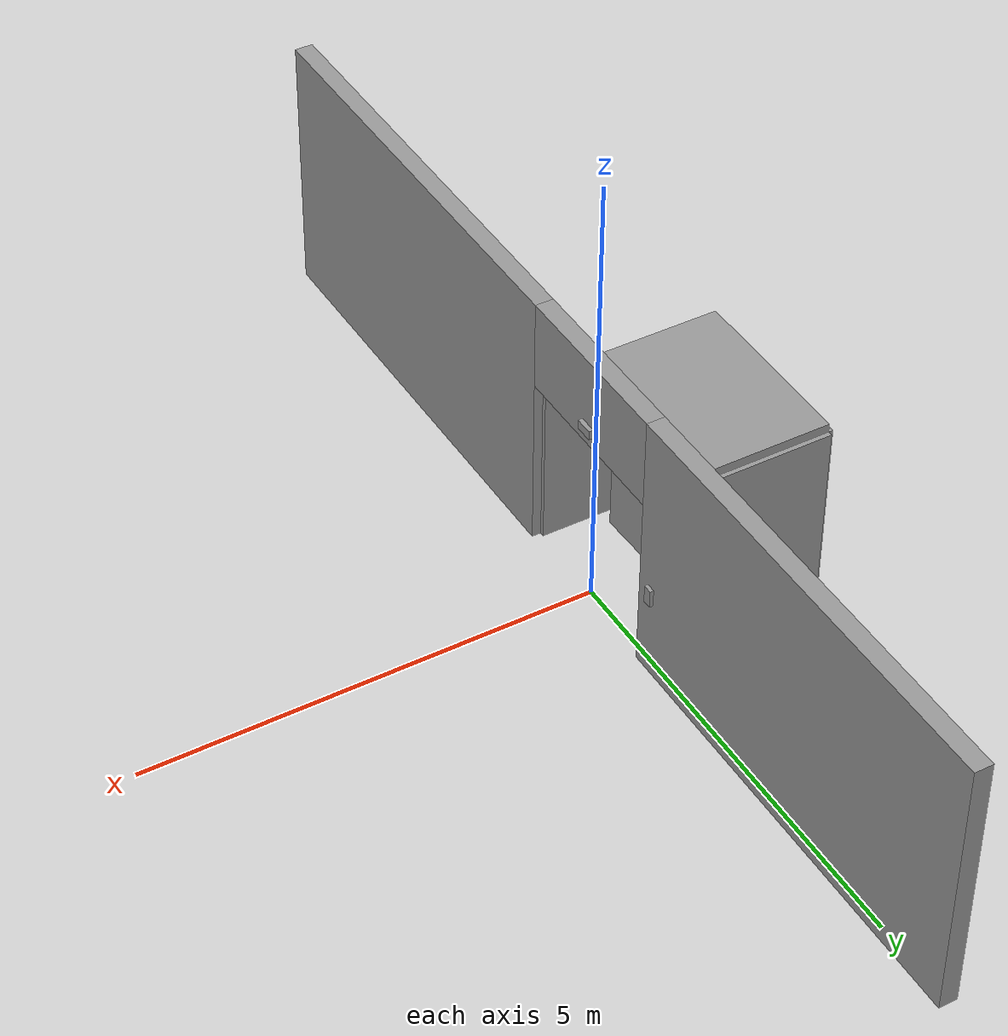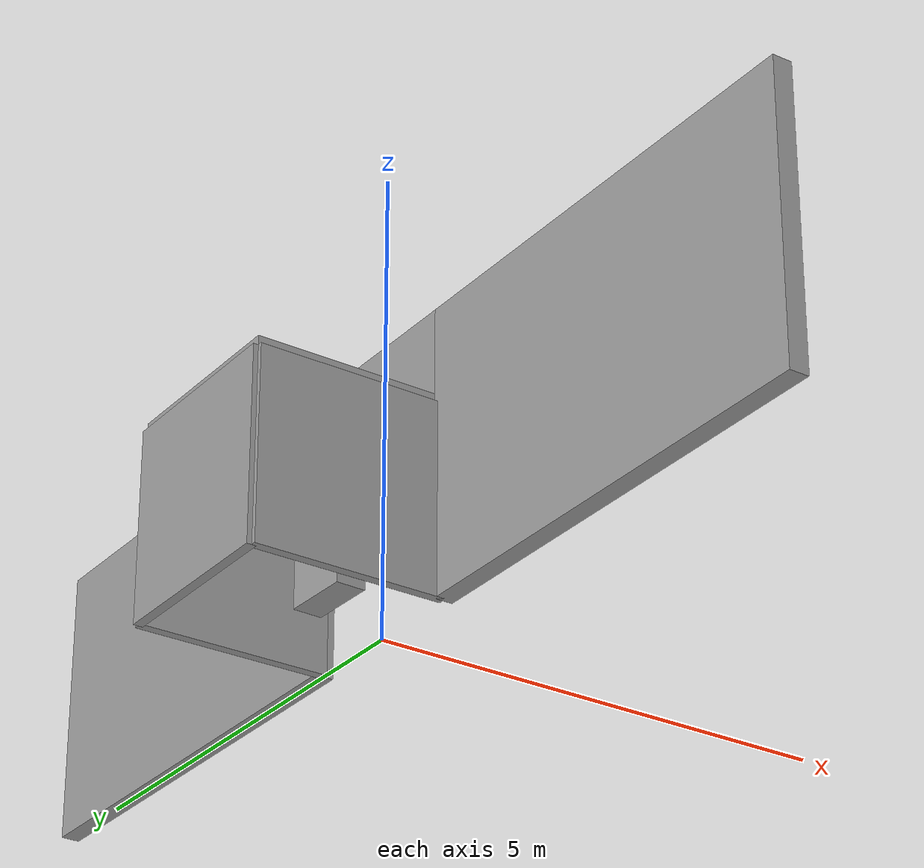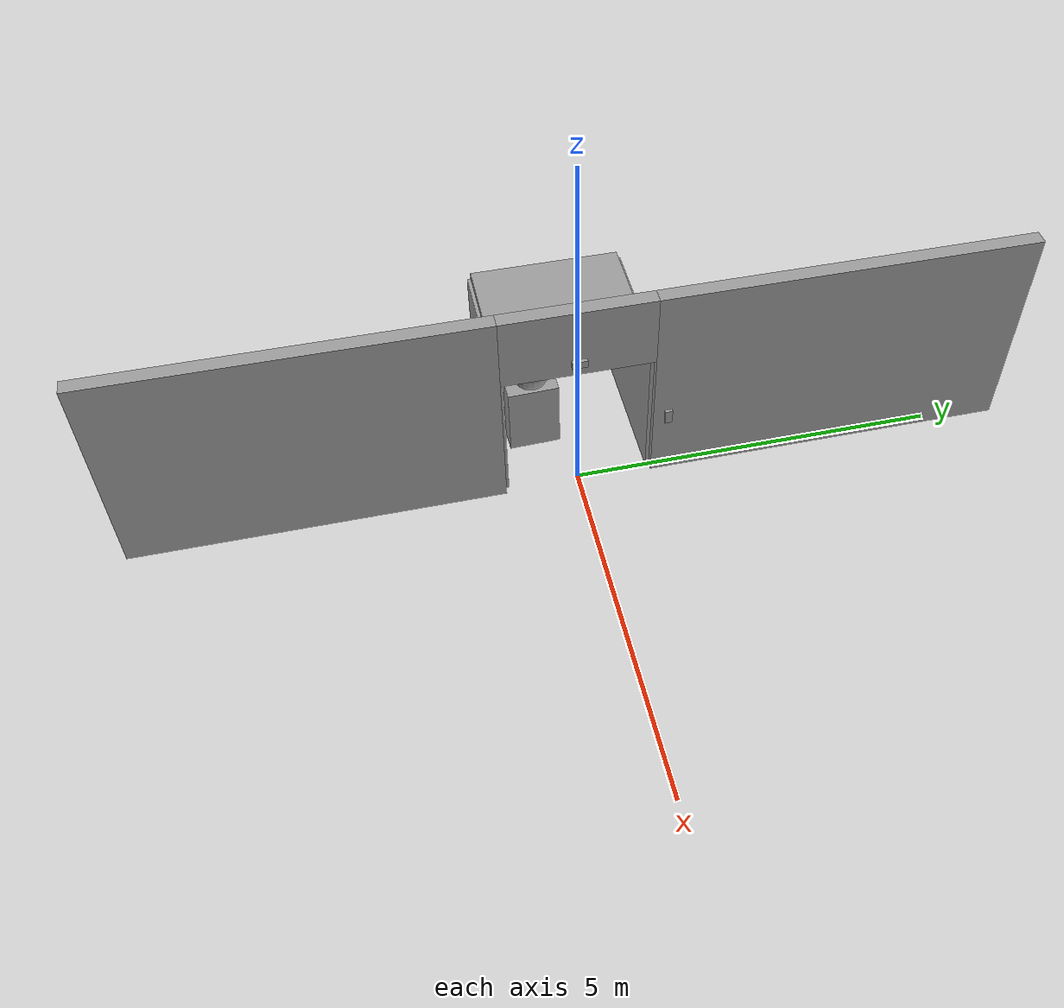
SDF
<?xml version='1.0'?>
<sdf version='1.7'>
  <model name='elevator'>
    <link name='link_1'>
      <inertial>
        <mass>1</mass>
        <inertia>
          <ixx>0.166667</ixx>
          <ixy>0</ixy>
          <ixz>0</ixz>
          <iyy>0.166667</iyy>
          <iyz>0</iyz>
          <izz>0.166667</izz>
        </inertia>
        <pose>0 0 0 0 -0 0</pose>
      </inertial>
      <pose>0.125 0 2.2 0 -0 0</pose>
      <gravity>1</gravity>
      <self_collide>0</self_collide>
      <kinematic>0</kinematic>
      <enable_wind>0</enable_wind>
      <visual name='visual'>
        <pose>0 0 0 0 -0 0</pose>
        <geometry>
          <box>
            <size>0.05 0.2 0.1</size>
          </box>
        </geometry>
        <material>
          <lighting>1</lighting>
          <script>
            <uri>file://media/materials/scripts/gazebo.material</uri>
            <name>Gazebo/Grey</name>
          </script>
          <shader type='pixel'>
            <normal_map>__default__</normal_map>
          </shader>
          <ambient>0.93 0.94 0.95 1</ambient>
          <diffuse>0.93 0.94 0.95 1</diffuse>
          <specular>0.93 0.94 0.95 1</specular>
          <emissive>0 0 0 1</emissive>
        </material>
        <transparency>0</transparency>
        <cast_shadows>1</cast_shadows>
      </visual>
      <collision name='collision'>
        <laser_retro>0</laser_retro>
        <max_contacts>10</max_contacts>
        <pose>0 0 0 0 -0 0</pose>
        <geometry>
          <box>
            <size>0.05 0.2 0.1</size>
          </box>
        </geometry>
        <surface>
          <friction>
            <ode>
              <mu>1</mu>
              <mu2>1</mu2>
              <fdir1>0 0 0</fdir1>
              <slip1>0</slip1>
              <slip2>0</slip2>
            </ode>
            <torsional>
              <coefficient>1</coefficient>
              <patch_radius>0</patch_radius>
              <surface_radius>0</surface_radius>
              <use_patch_radius>1</use_patch_radius>
              <ode>
                <slip>0</slip>
              </ode>
            </torsional>
          </friction>
          <bounce>
            <restitution_coefficient>0</restitution_coefficient>
            <threshold>1e+06</threshold>
          </bounce>
          <contact>
            <collide_without_contact>0</collide_without_contact>
            <collide_without_contact_bitmask>1</collide_without_contact_bitmask>
            <collide_bitmask>1</collide_bitmask>
            <ode>
              <soft_cfm>0</soft_cfm>
              <soft_erp>0.2</soft_erp>
              <kp>1e+13</kp>
              <kd>1</kd>
              <max_vel>0.01</max_vel>
              <min_depth>0</min_depth>
            </ode>
            <bullet>
              <split_impulse>1</split_impulse>
              <split_impulse_penetration_threshold>-0.01</split_impulse_penetration_threshold>
              <soft_cfm>0</soft_cfm>
              <soft_erp>0.2</soft_erp>
              <kp>1e+13</kp>
              <kd>1</kd>
            </bullet>
          </contact>
        </surface>
      </collision>
    </link>
    <link name='link_1_clone'>
      <inertial>
        <mass>1</mass>
        <inertia>
          <ixx>0.166667</ixx>
          <ixy>0</ixy>
          <ixz>0</ixz>
          <iyy>0.166667</iyy>
          <iyz>0</iyz>
          <izz>0.166667</izz>
        </inertia>
        <pose>0 0 0 0 -0 0</pose>
      </inertial>
      <pose>0.115 1.2 1 0 -0 0</pose>
      <gravity>1</gravity>
      <self_collide>0</self_collide>
      <kinematic>0</kinematic>
      <enable_wind>0</enable_wind>
      <visual name='visual'>
        <pose>0 0 0 0 -0 0</pose>
        <geometry>
          <box>
            <size>0.05 0.1 0.2</size>
          </box>
        </geometry>
        <material>
          <lighting>1</lighting>
          <script>
            <uri>file://media/materials/scripts/gazebo.material</uri>
            <name>Gazebo/Grey</name>
          </script>
          <shader type='pixel'>
            <normal_map>__default__</normal_map>
          </shader>
          <ambient>0.6 0.6 0.6 1</ambient>
          <diffuse>0.6 0.6 0.6 1</diffuse>
          <specular>0.6 0.6 0.6 1</specular>
          <emissive>0.6 0.6 0.6 1</emissive>
        </material>
        <transparency>0</transparency>
        <cast_shadows>1</cast_shadows>
      </visual>
      <collision name='collision'>
        <laser_retro>0</laser_retro>
        <max_contacts>10</max_contacts>
        <pose>0 0 0 0 -0 0</pose>
        <geometry>
          <box>
            <size>0.05 0.1 0.2</size>
          </box>
        </geometry>
        <surface>
          <friction>
            <ode>
              <mu>1</mu>
              <mu2>1</mu2>
              <fdir1>0 0 0</fdir1>
              <slip1>0</slip1>
              <slip2>0</slip2>
            </ode>
            <torsional>
              <coefficient>1</coefficient>
              <patch_radius>0</patch_radius>
              <surface_radius>0</surface_radius>
              <use_patch_radius>1</use_patch_radius>
              <ode>
                <slip>0</slip>
              </ode>
            </torsional>
          </friction>
          <bounce>
            <restitution_coefficient>0</restitution_coefficient>
            <threshold>1e+06</threshold>
          </bounce>
          <contact>
            <collide_without_contact>0</collide_without_contact>
            <collide_without_contact_bitmask>1</collide_without_contact_bitmask>
            <collide_bitmask>1</collide_bitmask>
            <ode>
              <soft_cfm>0</soft_cfm>
              <soft_erp>0.2</soft_erp>
              <kp>1e+13</kp>
              <kd>1</kd>
              <max_vel>0.01</max_vel>
              <min_depth>0</min_depth>
            </ode>
            <bullet>
              <split_impulse>1</split_impulse>
              <split_impulse_penetration_threshold>-0.01</split_impulse_penetration_threshold>
              <soft_cfm>0</soft_cfm>
              <soft_erp>0.2</soft_erp>
              <kp>1e+13</kp>
              <kd>1</kd>
            </bullet>
          </contact>
        </surface>
      </collision>
    </link>
    <link name='link_2'>
      <inertial>
        <mass>1</mass>
        <inertia>
          <ixx>0.166667</ixx>
          <ixy>0</ixy>
          <ixz>0</ixz>
          <iyy>0.166667</iyy>
          <iyz>0</iyz>
          <izz>0.166667</izz>
        </inertia>
        <pose>0 0 0 0 -0 0</pose>
      </inertial>
      <pose>0 -3.5 1.5 0 -0 0</pose>
      <gravity>1</gravity>
      <self_collide>0</self_collide>
      <kinematic>0</kinematic>
      <enable_wind>0</enable_wind>
      <visual name='visual'>
        <pose>0 0 0 0 -0 0</pose>
        <geometry>
          <box>
            <size>0.2 5 3</size>
          </box>
        </geometry>
        <material>
          <lighting>1</lighting>
          <script>
            <uri>file://media/materials/scripts/gazebo.material</uri>
            <name>Gazebo/Grey</name>
          </script>
          <shader type='pixel'>
            <normal_map>__default__</normal_map>
          </shader>
          <ambient>0.3 0.3 0.3 1</ambient>
          <diffuse>0.7 0.7 0.7 1</diffuse>
          <specular>0.01 0.01 0.01 1</specular>
          <emissive>0 0 0 1</emissive>
        </material>
        <transparency>0</transparency>
        <cast_shadows>1</cast_shadows>
      </visual>
      <collision name='collision'>
        <laser_retro>0</laser_retro>
        <max_contacts>10</max_contacts>
        <pose>0 0 0 0 -0 0</pose>
        <geometry>
          <box>
            <size>0.2 5 3</size>
          </box>
        </geometry>
        <surface>
          <friction>
            <ode>
              <mu>1</mu>
              <mu2>1</mu2>
              <fdir1>0 0 0</fdir1>
              <slip1>0</slip1>
              <slip2>0</slip2>
            </ode>
            <torsional>
              <coefficient>1</coefficient>
              <patch_radius>0</patch_radius>
              <surface_radius>0</surface_radius>
              <use_patch_radius>1</use_patch_radius>
              <ode>
                <slip>0</slip>
              </ode>
            </torsional>
          </friction>
          <bounce>
            <restitution_coefficient>0</restitution_coefficient>
            <threshold>1e+06</threshold>
          </bounce>
          <contact>
            <collide_without_contact>0</collide_without_contact>
            <collide_without_contact_bitmask>1</collide_without_contact_bitmask>
            <collide_bitmask>1</collide_bitmask>
            <ode>
              <soft_cfm>0</soft_cfm>
              <soft_erp>0.2</soft_erp>
              <kp>1e+13</kp>
              <kd>1</kd>
              <max_vel>0.01</max_vel>
              <min_depth>0</min_depth>
            </ode>
            <bullet>
              <split_impulse>1</split_impulse>
              <split_impulse_penetration_threshold>-0.01</split_impulse_penetration_threshold>
              <soft_cfm>0</soft_cfm>
              <soft_erp>0.2</soft_erp>
              <kp>1e+13</kp>
              <kd>1</kd>
            </bullet>
          </contact>
        </surface>
      </collision>
    </link>
    <link name='link_2_clone'>
      <inertial>
        <mass>1</mass>
        <inertia>
          <ixx>0.166667</ixx>
          <ixy>0</ixy>
          <ixz>0</ixz>
          <iyy>0.166667</iyy>
          <iyz>0</iyz>
          <izz>0.166667</izz>
        </inertia>
        <pose>0 0 0 0 -0 0</pose>
      </inertial>
      <pose>0 3.5 1.5 0 -0 0</pose>
      <gravity>1</gravity>
      <self_collide>0</self_collide>
      <kinematic>0</kinematic>
      <enable_wind>0</enable_wind>
      <visual name='visual'>
        <pose>0 0 0 0 -0 0</pose>
        <geometry>
          <box>
            <size>0.2 5 3</size>
          </box>
        </geometry>
        <material>
          <lighting>1</lighting>
          <script>
            <uri>file://media/materials/scripts/gazebo.material</uri>
            <name>Gazebo/Grey</name>
          </script>
          <shader type='pixel'>
            <normal_map>__default__</normal_map>
          </shader>
          <ambient>0.3 0.3 0.3 1</ambient>
          <diffuse>0.7 0.7 0.7 1</diffuse>
          <specular>0.01 0.01 0.01 1</specular>
          <emissive>0 0 0 1</emissive>
        </material>
        <transparency>0</transparency>
        <cast_shadows>1</cast_shadows>
      </visual>
      <collision name='collision'>
        <laser_retro>0</laser_retro>
        <max_contacts>10</max_contacts>
        <pose>0 0 0 0 -0 0</pose>
        <geometry>
          <box>
            <size>0.2 5 3</size>
          </box>
        </geometry>
        <surface>
          <friction>
            <ode>
              <mu>1</mu>
              <mu2>1</mu2>
              <fdir1>0 0 0</fdir1>
              <slip1>0</slip1>
              <slip2>0</slip2>
            </ode>
            <torsional>
              <coefficient>1</coefficient>
              <patch_radius>0</patch_radius>
              <surface_radius>0</surface_radius>
              <use_patch_radius>1</use_patch_radius>
              <ode>
                <slip>0</slip>
              </ode>
            </torsional>
          </friction>
          <bounce>
            <restitution_coefficient>0</restitution_coefficient>
            <threshold>1e+06</threshold>
          </bounce>
          <contact>
            <collide_without_contact>0</collide_without_contact>
            <collide_without_contact_bitmask>1</collide_without_contact_bitmask>
            <collide_bitmask>1</collide_bitmask>
            <ode>
              <soft_cfm>0</soft_cfm>
              <soft_erp>0.2</soft_erp>
              <kp>1e+13</kp>
              <kd>1</kd>
              <max_vel>0.01</max_vel>
              <min_depth>0</min_depth>
            </ode>
            <bullet>
              <split_impulse>1</split_impulse>
              <split_impulse_penetration_threshold>-0.01</split_impulse_penetration_threshold>
              <soft_cfm>0</soft_cfm>
              <soft_erp>0.2</soft_erp>
              <kp>1e+13</kp>
              <kd>1</kd>
            </bullet>
          </contact>
        </surface>
      </collision>
    </link>
    <link name='link_2_clone_0'>
      <inertial>
        <mass>1</mass>
        <inertia>
          <ixx>0.166667</ixx>
          <ixy>0</ixy>
          <ixz>0</ixz>
          <iyy>0.166667</iyy>
          <iyz>0</iyz>
          <izz>0.166667</izz>
        </inertia>
        <pose>0 0 0 0 -0 0</pose>
      </inertial>
      <pose>0 0 2.5 0 -0 0</pose>
      <gravity>1</gravity>
      <self_collide>0</self_collide>
      <kinematic>0</kinematic>
      <enable_wind>0</enable_wind>
      <visual name='visual'>
        <pose>0 0 0 0 -0 0</pose>
        <geometry>
          <box>
            <size>0.2 2 1</size>
          </box>
        </geometry>
        <material>
          <lighting>1</lighting>
          <script>
            <uri>file://media/materials/scripts/gazebo.material</uri>
            <name>Gazebo/Grey</name>
          </script>
          <shader type='pixel'>
            <normal_map>__default__</normal_map>
          </shader>
          <ambient>0.3 0.3 0.3 1</ambient>
          <diffuse>0.7 0.7 0.7 1</diffuse>
          <specular>0.01 0.01 0.01 1</specular>
          <emissive>0 0 0 1</emissive>
        </material>
        <transparency>0</transparency>
        <cast_shadows>1</cast_shadows>
      </visual>
      <collision name='collision'>
        <laser_retro>0</laser_retro>
        <max_contacts>10</max_contacts>
        <pose>0 0 0 0 -0 0</pose>
        <geometry>
          <box>
            <size>0.2 2 1</size>
          </box>
        </geometry>
        <surface>
          <friction>
            <ode>
              <mu>1</mu>
              <mu2>1</mu2>
              <fdir1>0 0 0</fdir1>
              <slip1>0</slip1>
              <slip2>0</slip2>
            </ode>
            <torsional>
              <coefficient>1</coefficient>
              <patch_radius>0</patch_radius>
              <surface_radius>0</surface_radius>
              <use_patch_radius>1</use_patch_radius>
              <ode>
                <slip>0</slip>
              </ode>
            </torsional>
          </friction>
          <bounce>
            <restitution_coefficient>0</restitution_coefficient>
            <threshold>1e+06</threshold>
          </bounce>
          <contact>
            <collide_without_contact>0</collide_without_contact>
            <collide_without_contact_bitmask>1</collide_without_contact_bitmask>
            <collide_bitmask>1</collide_bitmask>
            <ode>
              <soft_cfm>0</soft_cfm>
              <soft_erp>0.2</soft_erp>
              <kp>1e+13</kp>
              <kd>1</kd>
              <max_vel>0.01</max_vel>
              <min_depth>0</min_depth>
            </ode>
            <bullet>
              <split_impulse>1</split_impulse>
              <split_impulse_penetration_threshold>-0.01</split_impulse_penetration_threshold>
              <soft_cfm>0</soft_cfm>
              <soft_erp>0.2</soft_erp>
              <kp>1e+13</kp>
              <kd>1</kd>
            </bullet>
          </contact>
        </surface>
      </collision>
    </link>
    <link name='link_2_clone_1_clone_0'>
      <inertial>
        <mass>1</mass>
        <inertia>
          <ixx>0.166667</ixx>
          <ixy>0</ixy>
          <ixz>0</ixz>
          <iyy>0.166667</iyy>
          <iyz>0</iyz>
          <izz>0.166667</izz>
        </inertia>
        <pose>0 0 0 0 -0 0</pose>
      </inertial>
      <pose>-2 0 0.999999 0 -0 0</pose>
      <gravity>1</gravity>
      <self_collide>0</self_collide>
      <kinematic>0</kinematic>
      <enable_wind>0</enable_wind>
      <visual name='visual'>
        <pose>0 0 0 0 -0 0</pose>
        <geometry>
          <box>
            <size>0.1 2 2</size>
          </box>
        </geometry>
        <material>
          <lighting>1</lighting>
          <script>
            <uri>file://media/materials/scripts/gazebo.material</uri>
            <name>Gazebo/Grey</name>
          </script>
          <shader type='pixel'>
            <normal_map>__default__</normal_map>
          </shader>
          <ambient>0.3 0.3 0.3 1</ambient>
          <diffuse>0.7 0.7 0.7 1</diffuse>
          <specular>0.01 0.01 0.01 1</specular>
          <emissive>0 0 0 1</emissive>
        </material>
        <transparency>0</transparency>
        <cast_shadows>1</cast_shadows>
      </visual>
      <collision name='collision'>
        <laser_retro>0</laser_retro>
        <max_contacts>10</max_contacts>
        <pose>0 0 0 0 -0 0</pose>
        <geometry>
          <box>
            <size>0.1 2 2</size>
          </box>
        </geometry>
        <surface>
          <friction>
            <ode>
              <mu>1</mu>
              <mu2>1</mu2>
              <fdir1>0 0 0</fdir1>
              <slip1>0</slip1>
              <slip2>0</slip2>
            </ode>
            <torsional>
              <coefficient>1</coefficient>
              <patch_radius>0</patch_radius>
              <surface_radius>0</surface_radius>
              <use_patch_radius>1</use_patch_radius>
              <ode>
                <slip>0</slip>
              </ode>
            </torsional>
          </friction>
          <bounce>
            <restitution_coefficient>0</restitution_coefficient>
            <threshold>1e+06</threshold>
          </bounce>
          <contact>
            <collide_without_contact>0</collide_without_contact>
            <collide_without_contact_bitmask>1</collide_without_contact_bitmask>
            <collide_bitmask>1</collide_bitmask>
            <ode>
              <soft_cfm>0</soft_cfm>
              <soft_erp>0.2</soft_erp>
              <kp>1e+13</kp>
              <kd>1</kd>
              <max_vel>0.01</max_vel>
              <min_depth>0</min_depth>
            </ode>
            <bullet>
              <split_impulse>1</split_impulse>
              <split_impulse_penetration_threshold>-0.01</split_impulse_penetration_threshold>
              <soft_cfm>0</soft_cfm>
              <soft_erp>0.2</soft_erp>
              <kp>1e+13</kp>
              <kd>1</kd>
            </bullet>
          </contact>
        </surface>
      </collision>
    </link>
    <link name='link_2_clone_1_clone_0_clone'>
      <inertial>
        <mass>1</mass>
        <inertia>
          <ixx>0.166667</ixx>
          <ixy>0</ixy>
          <ixz>0</ixz>
          <iyy>0.166667</iyy>
          <iyz>0</iyz>
          <izz>0.166667</izz>
        </inertia>
        <pose>0 0 0 0 -0 0</pose>
      </inertial>
      <pose>-1 1 0.999999 0 -0 0</pose>
      <gravity>1</gravity>
      <self_collide>0</self_collide>
      <kinematic>0</kinematic>
      <enable_wind>0</enable_wind>
      <visual name='visual'>
        <pose>0 0 0 0 -0 0</pose>
        <geometry>
          <box>
            <size>2 0.1 2</size>
          </box>
        </geometry>
        <material>
          <lighting>1</lighting>
          <script>
            <uri>file://media/materials/scripts/gazebo.material</uri>
            <name>Gazebo/Grey</name>
          </script>
          <shader type='pixel'>
            <normal_map>__default__</normal_map>
          </shader>
          <ambient>0.3 0.3 0.3 1</ambient>
          <diffuse>0.7 0.7 0.7 1</diffuse>
          <specular>0.01 0.01 0.01 1</specular>
          <emissive>0 0 0 1</emissive>
        </material>
        <transparency>0</transparency>
        <cast_shadows>1</cast_shadows>
      </visual>
      <collision name='collision'>
        <laser_retro>0</laser_retro>
        <max_contacts>10</max_contacts>
        <pose>0 0 0 0 -0 0</pose>
        <geometry>
          <box>
            <size>2 0.1 2</size>
          </box>
        </geometry>
        <surface>
          <friction>
            <ode>
              <mu>1</mu>
              <mu2>1</mu2>
              <fdir1>0 0 0</fdir1>
              <slip1>0</slip1>
              <slip2>0</slip2>
            </ode>
            <torsional>
              <coefficient>1</coefficient>
              <patch_radius>0</patch_radius>
              <surface_radius>0</surface_radius>
              <use_patch_radius>1</use_patch_radius>
              <ode>
                <slip>0</slip>
              </ode>
            </torsional>
          </friction>
          <bounce>
            <restitution_coefficient>0</restitution_coefficient>
            <threshold>1e+06</threshold>
          </bounce>
          <contact>
            <collide_without_contact>0</collide_without_contact>
            <collide_without_contact_bitmask>1</collide_without_contact_bitmask>
            <collide_bitmask>1</collide_bitmask>
            <ode>
              <soft_cfm>0</soft_cfm>
              <soft_erp>0.2</soft_erp>
              <kp>1e+13</kp>
              <kd>1</kd>
              <max_vel>0.01</max_vel>
              <min_depth>0</min_depth>
            </ode>
            <bullet>
              <split_impulse>1</split_impulse>
              <split_impulse_penetration_threshold>-0.01</split_impulse_penetration_threshold>
              <soft_cfm>0</soft_cfm>
              <soft_erp>0.2</soft_erp>
              <kp>1e+13</kp>
              <kd>1</kd>
            </bullet>
          </contact>
        </surface>
      </collision>
    </link>
    <link name='link_2_clone_1_clone_0_clone_clone'>
      <inertial>
        <mass>1</mass>
        <inertia>
          <ixx>0.166667</ixx>
          <ixy>0</ixy>
          <ixz>0</ixz>
          <iyy>0.166667</iyy>
          <iyz>0</iyz>
          <izz>0.166667</izz>
        </inertia>
        <pose>0 0 0 0 -0 0</pose>
      </inertial>
      <pose>-1 -1 1 0 -0 0</pose>
      <gravity>1</gravity>
      <self_collide>0</self_collide>
      <kinematic>0</kinematic>
      <enable_wind>0</enable_wind>
      <visual name='visual'>
        <pose>0 0 0 0 -0 0</pose>
        <geometry>
          <box>
            <size>2 0.1 2</size>
          </box>
        </geometry>
        <material>
          <lighting>1</lighting>
          <script>
            <uri>file://media/materials/scripts/gazebo.material</uri>
            <name>Gazebo/Grey</name>
          </script>
          <shader type='pixel'>
            <normal_map>__default__</normal_map>
          </shader>
          <ambient>0.3 0.3 0.3 1</ambient>
          <diffuse>0.7 0.7 0.7 1</diffuse>
          <specular>0.01 0.01 0.01 1</specular>
          <emissive>0 0 0 1</emissive>
        </material>
        <transparency>0</transparency>
        <cast_shadows>1</cast_shadows>
      </visual>
      <collision name='collision'>
        <laser_retro>0</laser_retro>
        <max_contacts>10</max_contacts>
        <pose>0 0 0 0 -0 0</pose>
        <geometry>
          <box>
            <size>2 0.1 2</size>
          </box>
        </geometry>
        <surface>
          <friction>
            <ode>
              <mu>1</mu>
              <mu2>1</mu2>
              <fdir1>0 0 0</fdir1>
              <slip1>0</slip1>
              <slip2>0</slip2>
            </ode>
            <torsional>
              <coefficient>1</coefficient>
              <patch_radius>0</patch_radius>
              <surface_radius>0</surface_radius>
              <use_patch_radius>1</use_patch_radius>
              <ode>
                <slip>0</slip>
              </ode>
            </torsional>
          </friction>
          <bounce>
            <restitution_coefficient>0</restitution_coefficient>
            <threshold>1e+06</threshold>
          </bounce>
          <contact>
            <collide_without_contact>0</collide_without_contact>
            <collide_without_contact_bitmask>1</collide_without_contact_bitmask>
            <collide_bitmask>1</collide_bitmask>
            <ode>
              <soft_cfm>0</soft_cfm>
              <soft_erp>0.2</soft_erp>
              <kp>1e+13</kp>
              <kd>1</kd>
              <max_vel>0.01</max_vel>
              <min_depth>0</min_depth>
            </ode>
            <bullet>
              <split_impulse>1</split_impulse>
              <split_impulse_penetration_threshold>-0.01</split_impulse_penetration_threshold>
              <soft_cfm>0</soft_cfm>
              <soft_erp>0.2</soft_erp>
              <kp>1e+13</kp>
              <kd>1</kd>
            </bullet>
          </contact>
        </surface>
      </collision>
    </link>
    <link name='link_2_clone_1_clone_0_clone_clone_0'>
      <inertial>
        <mass>1</mass>
        <inertia>
          <ixx>0.166667</ixx>
          <ixy>0</ixy>
          <ixz>0</ixz>
          <iyy>0.166667</iyy>
          <iyz>0</iyz>
          <izz>0.166667</izz>
        </inertia>
        <pose>0 0 0 0 -0 0</pose>
      </inertial>
      <pose>-1 0 2.05 0 -0 0</pose>
      <gravity>1</gravity>
      <self_collide>0</self_collide>
      <kinematic>0</kinematic>
      <enable_wind>0</enable_wind>
      <visual name='visual'>
        <pose>0 0 0 0 -0 0</pose>
        <geometry>
          <box>
            <size>2 2 0.1</size>
          </box>
        </geometry>
        <material>
          <lighting>1</lighting>
          <script>
            <uri>file://media/materials/scripts/gazebo.material</uri>
            <name>Gazebo/Grey</name>
          </script>
          <shader type='pixel'>
            <normal_map>__default__</normal_map>
          </shader>
          <ambient>0.3 0.3 0.3 1</ambient>
          <diffuse>0.7 0.7 0.7 1</diffuse>
          <specular>0.01 0.01 0.01 1</specular>
          <emissive>0 0 0 1</emissive>
        </material>
        <transparency>0</transparency>
        <cast_shadows>1</cast_shadows>
      </visual>
      <collision name='collision'>
        <laser_retro>0</laser_retro>
        <max_contacts>10</max_contacts>
        <pose>0 0 0 0 -0 0</pose>
        <geometry>
          <box>
            <size>2 2 0.1</size>
          </box>
        </geometry>
        <surface>
          <friction>
            <ode>
              <mu>1</mu>
              <mu2>1</mu2>
              <fdir1>0 0 0</fdir1>
              <slip1>0</slip1>
              <slip2>0</slip2>
            </ode>
            <torsional>
              <coefficient>1</coefficient>
              <patch_radius>0</patch_radius>
              <surface_radius>0</surface_radius>
              <use_patch_radius>1</use_patch_radius>
              <ode>
                <slip>0</slip>
              </ode>
            </torsional>
          </friction>
          <bounce>
            <restitution_coefficient>0</restitution_coefficient>
            <threshold>1e+06</threshold>
          </bounce>
          <contact>
            <collide_without_contact>0</collide_without_contact>
            <collide_without_contact_bitmask>1</collide_without_contact_bitmask>
            <collide_bitmask>1</collide_bitmask>
            <ode>
              <soft_cfm>0</soft_cfm>
              <soft_erp>0.2</soft_erp>
              <kp>1e+13</kp>
              <kd>1</kd>
              <max_vel>0.01</max_vel>
              <min_depth>0</min_depth>
            </ode>
            <bullet>
              <split_impulse>1</split_impulse>
              <split_impulse_penetration_threshold>-0.01</split_impulse_penetration_threshold>
              <soft_cfm>0</soft_cfm>
              <soft_erp>0.2</soft_erp>
              <kp>1e+13</kp>
              <kd>1</kd>
            </bullet>
          </contact>
        </surface>
      </collision>
    </link>
    <model name='person'>
      <link name='link_0'>
        <inertial>
          <mass>1</mass>
          <inertia>
            <ixx>0.166667</ixx>
            <ixy>0</ixy>
            <ixz>0</ixz>
            <iyy>0.166667</iyy>
            <iyz>0</iyz>
            <izz>0.166667</izz>
          </inertia>
          <pose>0 0 0 0 -0 0</pose>
        </inertial>
        <pose>0 -0 0.5 0 -0 0</pose>
        <gravity>1</gravity>
        <self_collide>0</self_collide>
        <kinematic>0</kinematic>
        <enable_wind>0</enable_wind>
        <visual name='visual'>
          <pose>0 0 0 0 -0 0</pose>
          <geometry>
            <box>
              <size>0.7 0.3 1</size>
            </box>
          </geometry>
          <material>
            <lighting>1</lighting>
            <script>
              <uri>file://media/materials/scripts/gazebo.material</uri>
              <name>Gazebo/Grey</name>
            </script>
            <shader type='pixel'>
              <normal_map>__default__</normal_map>
            </shader>
            <ambient>0.9 0.9 0.9 1</ambient>
            <diffuse>0.9 0.9 0.9 1</diffuse>
            <specular>0.01 0.01 0.01 1</specular>
            <emissive>0 0 0 1</emissive>
          </material>
          <transparency>0</transparency>
          <cast_shadows>1</cast_shadows>
        </visual>
        <collision name='collision'>
          <laser_retro>0</laser_retro>
          <max_contacts>10</max_contacts>
          <pose>0 0 0 0 -0 0</pose>
          <geometry>
            <box>
              <size>0.7 0.3 1</size>
            </box>
          </geometry>
          <surface>
            <friction>
              <ode>
                <mu>1</mu>
                <mu2>1</mu2>
                <fdir1>0 0 0</fdir1>
                <slip1>0</slip1>
                <slip2>0</slip2>
              </ode>
              <torsional>
                <coefficient>1</coefficient>
                <patch_radius>0</patch_radius>
                <surface_radius>0</surface_radius>
                <use_patch_radius>1</use_patch_radius>
                <ode>
                  <slip>0</slip>
                </ode>
              </torsional>
            </friction>
            <bounce>
              <restitution_coefficient>0</restitution_coefficient>
              <threshold>1e+06</threshold>
            </bounce>
            <contact>
              <collide_without_contact>0</collide_without_contact>
              <collide_without_contact_bitmask>1</collide_without_contact_bitmask>
              <collide_bitmask>1</collide_bitmask>
              <ode>
                <soft_cfm>0</soft_cfm>
                <soft_erp>0.2</soft_erp>
                <kp>1e+13</kp>
                <kd>1</kd>
                <max_vel>0.01</max_vel>
                <min_depth>0</min_depth>
              </ode>
              <bullet>
                <split_impulse>1</split_impulse>
                <split_impulse_penetration_threshold>-0.01</split_impulse_penetration_threshold>
                <soft_cfm>0</soft_cfm>
                <soft_erp>0.2</soft_erp>
                <kp>1e+13</kp>
                <kd>1</kd>
              </bullet>
            </contact>
          </surface>
        </collision>
      </link>
      <link name='link_1'>
        <inertial>
          <mass>1</mass>
          <inertia>
            <ixx>0.1</ixx>
            <ixy>0</ixy>
            <ixz>0</ixz>
            <iyy>0.1</iyy>
            <iyz>0</iyz>
            <izz>0.1</izz>
          </inertia>
          <pose>0 0 0 0 -0 0</pose>
        </inertial>
        <pose>0 0 1.25 0 -0 0</pose>
        <gravity>1</gravity>
        <self_collide>0</self_collide>
        <kinematic>0</kinematic>
        <enable_wind>0</enable_wind>
        <visual name='visual'>
          <pose>0 0 0 0 -0 0</pose>
          <geometry>
            <sphere>
              <radius>0.25</radius>
            </sphere>
          </geometry>
          <material>
            <lighting>1</lighting>
            <script>
              <uri>file://media/materials/scripts/gazebo.material</uri>
              <name>Gazebo/Grey</name>
            </script>
            <shader type='pixel'>
              <normal_map>__default__</normal_map>
            </shader>
            <ambient>0.9 0.9 0.9 1</ambient>
            <diffuse>0.9 0.9 0.9 1</diffuse>
            <specular>0.01 0.01 0.01 1</specular>
            <emissive>0 0 0 1</emissive>
          </material>
          <transparency>0</transparency>
          <cast_shadows>1</cast_shadows>
        </visual>
        <collision name='collision'>
          <laser_retro>0</laser_retro>
          <max_contacts>10</max_contacts>
          <pose>0 0 0 0 -0 0</pose>
          <geometry>
            <sphere>
              <radius>0.25</radius>
            </sphere>
          </geometry>
          <surface>
            <friction>
              <ode>
                <mu>1</mu>
                <mu2>1</mu2>
                <fdir1>0 0 0</fdir1>
                <slip1>0</slip1>
                <slip2>0</slip2>
              </ode>
              <torsional>
                <coefficient>1</coefficient>
                <patch_radius>0</patch_radius>
                <surface_radius>0</surface_radius>
                <use_patch_radius>1</use_patch_radius>
                <ode>
                  <slip>0</slip>
                </ode>
              </torsional>
            </friction>
            <bounce>
              <restitution_coefficient>0</restitution_coefficient>
              <threshold>1e+06</threshold>
            </bounce>
            <contact>
              <collide_without_contact>0</collide_without_contact>
              <collide_without_contact_bitmask>1</collide_without_contact_bitmask>
              <collide_bitmask>1</collide_bitmask>
              <ode>
                <soft_cfm>0</soft_cfm>
                <soft_erp>0.2</soft_erp>
                <kp>1e+13</kp>
                <kd>1</kd>
                <max_vel>0.01</max_vel>
                <min_depth>0</min_depth>
              </ode>
              <bullet>
                <split_impulse>1</split_impulse>
                <split_impulse_penetration_threshold>-0.01</split_impulse_penetration_threshold>
                <soft_cfm>0</soft_cfm>
                <soft_erp>0.2</soft_erp>
                <kp>1e+13</kp>
                <kd>1</kd>
              </bullet>
            </contact>
          </surface>
        </collision>
      </link>
      <static>0</static>
      <allow_auto_disable>1</allow_auto_disable>
      <pose>-0.856185 -0.443181 0 0 0 -1.54091</pose>
    </model>
    <joint name='link_2_JOINT_2' type='fixed'>
      <parent>link_2_clone</parent>
      <child>link_2_clone_0</child>
      <pose>0 0 0 -0.09 0 0</pose>
      <physics>
        <ode>
          <limit>
            <cfm>0</cfm>
            <erp>0.2</erp>
          </limit>
          <suspension>
            <cfm>0</cfm>
            <erp>0.2</erp>
          </suspension>
        </ode>
      </physics>
    </joint>
    <joint name='link_2_JOINT_3' type='fixed'>
      <parent>link_2</parent>
      <child>link_2_clone_0</child>
      <pose>0 0 0 0 -0 0</pose>
      <physics>
        <ode>
          <limit>
            <cfm>0</cfm>
            <erp>0.2</erp>
          </limit>
          <suspension>
            <cfm>0</cfm>
            <erp>0.2</erp>
          </suspension>
        </ode>
      </physics>
    </joint>
    <joint name='link_2_JOINT_5' type='revolute'>
      <parent>link_2</parent>
      <child>link_2_clone_1_clone_0_clone_clone</child>
      <pose>0 0 0 0 -0 0</pose>
      <axis>
        <xyz>1 0 0</xyz>
        <limit>
          <lower>-1.79769e+308</lower>
          <upper>1.79769e+308</upper>
          <effort>-1</effort>
          <velocity>-1</velocity>
        </limit>
        <dynamics>
          <spring_reference>0</spring_reference>
          <spring_stiffness>0</spring_stiffness>
          <damping>0</damping>
          <friction>0</friction>
        </dynamics>
      </axis>
      <physics>
        <ode>
          <limit>
            <cfm>0</cfm>
            <erp>0.2</erp>
          </limit>
          <suspension>
            <cfm>0</cfm>
            <erp>0.2</erp>
          </suspension>
        </ode>
      </physics>
    </joint>
    <joint name='link_2_clone_1_clone_0_JOINT_9' type='revolute'>
      <parent>link_2_clone_1_clone_0</parent>
      <child>link_2_clone_1_clone_0_clone_clone_0</child>
      <pose>0 0 0 0 -0 0</pose>
      <axis>
        <xyz>1 0 0</xyz>
        <limit>
          <lower>-1.79769e+308</lower>
          <upper>1.79769e+308</upper>
          <effort>-1</effort>
          <velocity>-1</velocity>
        </limit>
        <dynamics>
          <spring_reference>0</spring_reference>
          <spring_stiffness>0</spring_stiffness>
          <damping>0</damping>
          <friction>0</friction>
        </dynamics>
      </axis>
      <physics>
        <ode>
          <limit>
            <cfm>0</cfm>
            <erp>0.2</erp>
          </limit>
          <suspension>
            <cfm>0</cfm>
            <erp>0.2</erp>
          </suspension>
        </ode>
      </physics>
    </joint>
    <joint name='link_2_clone_1_clone_0_clone_JOINT_8' type='revolute'>
      <parent>link_2_clone_1_clone_0_clone</parent>
      <child>link_2_clone_1_clone_0</child>
      <pose>0 0 0 0 -0 0</pose>
      <axis>
        <xyz>1 0 0</xyz>
        <limit>
          <lower>-1.79769e+308</lower>
          <upper>1.79769e+308</upper>
          <effort>-1</effort>
          <velocity>-1</velocity>
        </limit>
        <dynamics>
          <spring_reference>0</spring_reference>
          <spring_stiffness>0</spring_stiffness>
          <damping>0</damping>
          <friction>0</friction>
        </dynamics>
      </axis>
      <physics>
        <ode>
          <limit>
            <cfm>0</cfm>
            <erp>0.2</erp>
          </limit>
          <suspension>
            <cfm>0</cfm>
            <erp>0.2</erp>
          </suspension>
        </ode>
      </physics>
    </joint>
    <joint name='link_2_clone_1_clone_0_clone_clone_0_JOINT_6' type='revolute'>
      <parent>link_2_clone_1_clone_0_clone_clone_0</parent>
      <child>link_2_clone_1_clone_0_clone_clone</child>
      <pose>0 0 0 0 -0 0</pose>
      <axis>
        <xyz>1 0 0</xyz>
        <limit>
          <lower>-1.79769e+308</lower>
          <upper>1.79769e+308</upper>
          <effort>-1</effort>
          <velocity>-1</velocity>
        </limit>
        <dynamics>
          <spring_reference>0</spring_reference>
          <spring_stiffness>0</spring_stiffness>
          <damping>0</damping>
          <friction>0</friction>
        </dynamics>
      </axis>
      <physics>
        <ode>
          <limit>
            <cfm>0</cfm>
            <erp>0.2</erp>
          </limit>
          <suspension>
            <cfm>0</cfm>
            <erp>0.2</erp>
          </suspension>
        </ode>
      </physics>
    </joint>
    <joint name='link_2_clone_JOINT_4' type='fixed'>
      <parent>link_2_clone</parent>
      <child>link_2_clone_1_clone_0_clone</child>
      <pose>0 0 0 -0.06 0 0</pose>
      <physics>
        <ode>
          <limit>
            <cfm>0</cfm>
            <erp>0.2</erp>
          </limit>
          <suspension>
            <cfm>0</cfm>
            <erp>0.2</erp>
          </suspension>
        </ode>
      </physics>
    </joint>
    <static>0</static>
    <allow_auto_disable>1</allow_auto_disable>
  </model>
</sdf>
